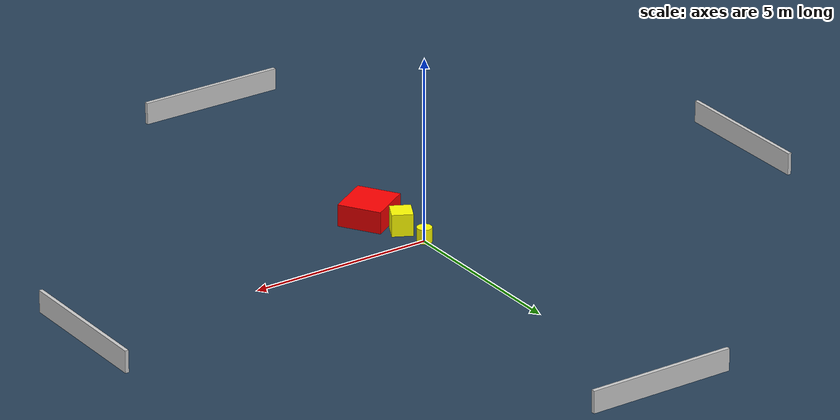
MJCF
<?xml version="1.0" ?>
<mujoco model="generated_environment">
  <option timestep="0.01" integrator="RK4" cone="elliptic"/>
  <default>
    <geom density="1"/>
  </default>
  <asset>
    <texture builtin="gradient" height="3072" name="skybox" rgb1="0.3 0.5 0.7" rgb2="0 0 0" type="skybox" width="512"/>
    <texture builtin="checker" height="300" name="groundplane" rgb1="0.2 0.3 0.4" rgb2="0.1 0.2 0.3" type="2d" width="300"/>
    <material name="groundplane" reflectance="0.2" texrepeat="5 5" texture="groundplane"/>
  </asset>
  <worldbody>
    <light dir="0 0 -1" directional="true" pos="0 0 1.5"/>
    <geom condim="3" friction="0.5 0.005 0.001" material="groundplane" name="floor" pos="0 0 0" size="0 0 0.05" type="plane"/>
    <body name="walls">
      <geom name="wall_1" condim="4" pos="-10.0 0.0 0.3" rgba="0.800000011920929 0.800000011920929 0.800000011920929 1.0" size="0.05 2.0 0.3" type="box"/>
      <geom name="wall_2" condim="4" pos="10.0 0.0 0.3" rgba="0.800000011920929 0.800000011920929 0.800000011920929 1.0" size="0.05 2.0 0.3" type="box"/>
      <geom name="wall_3" condim="4" pos="0.0 -10.0 0.3" rgba="0.800000011920929 0.800000011920929 0.800000011920929 1.0" size="2.0 0.05 0.3" type="box"/>
      <geom name="wall_4" condim="4" pos="0.0 10.0 0.3" rgba="0.800000011920929 0.800000011920929 0.800000011920929 1.0" size="2.0 0.05 0.3" type="box"/>
    </body>
    <body name="robot">
      <joint name="joint_x" type="slide" pos="0 0 0" axis="1 0 0"/>
      <joint name="joint_y" type="slide" pos="0 0 0" axis="0 1 0"/>
      <geom name="robot" type="cylinder" pos="0.0 0.0 0.2" size="0.2 0.2 0.0" mass="5.0" friction="1.0 0.005 0.0001" condim="4" rgba="1.0 1.0 0.0 1.0"/>
    </body>
    <body name="obstacle_1_movable">
      <geom name="obstacle_1_movable" condim="4" pos="0.15700297835289095 -0.8078736610433754 0.3" euler="0 0 332.5207473003238" friction="0.0 0.005 0.001" rgba="1.0 1.0 0.0 1.0" size="0.27894921246325743 0.2915920280475367 0.3" type="box" mass="0.1"/>
      <joint type="free"/>
    </body>
    <body name="obstacle_2_static">
      <geom name="obstacle_2_static" condim="4" pos="0.4654890112499842 -1.8012000375708386 0.3" euler="0 0 32.13809540426372" friction="0.0 0.005 0.001" rgba="1.0 0.0 0.0 1.0" size="0.6223228591942158 0.5911698650860191 0.3" type="box"/>
    </body>
  </worldbody>
  <actuator>
    <motor name="actuator_x" joint="joint_x" gear="1" ctrlrange="-1 1"/>
    <motor name="actuator_y" joint="joint_y" gear="1" ctrlrange="-1 1"/>
  </actuator>
</mujoco>
